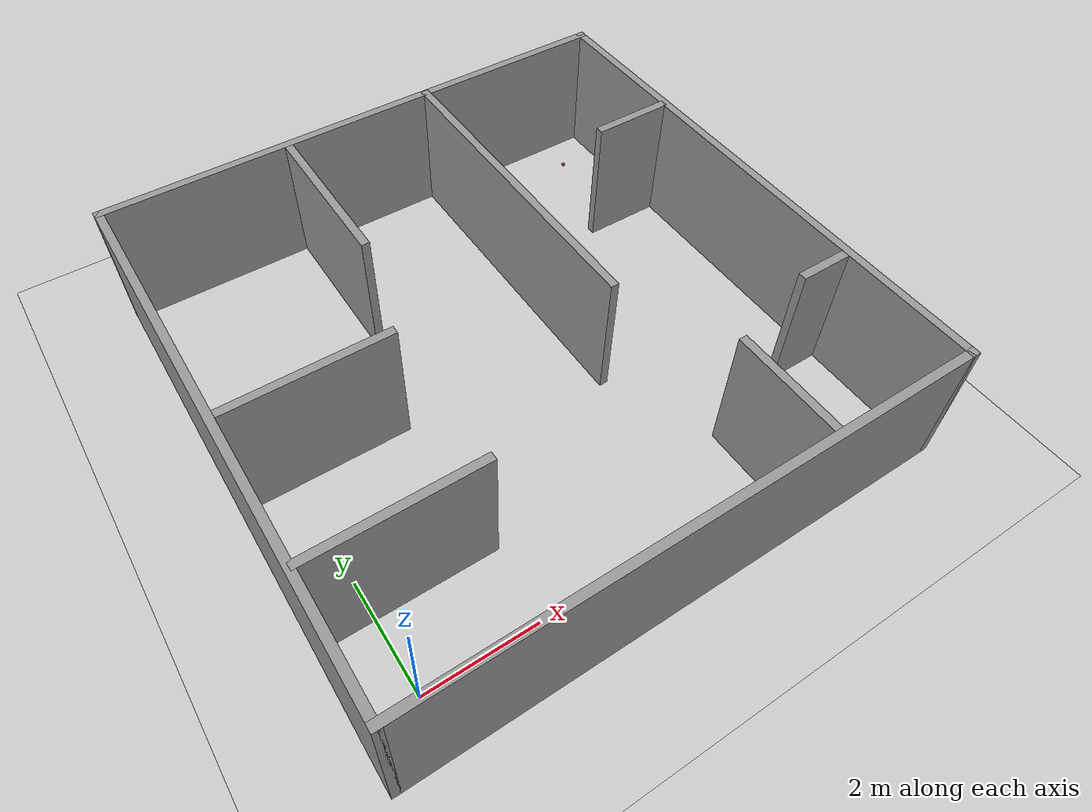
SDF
<sdf version="1.6">
 <world name="default">
  <light name="sun" type="directional">
   <pose>0 0 10 0 -0 0</pose>
   <diffuse>0.8 0.8 0.8 1</diffuse>
   <specular>0.2 0.2 0.2 1</specular>
   <attenuation>
    <range>1000</range>
    <constant>0.9</constant>
    <linear>0.01</linear>
    <quadratic>0.001</quadratic>
   </attenuation>
   <direction>-0.5 0.1 -0.9</direction>
  </light>
  <model name="ground_plane">
   <static>1</static>
   <link name="link">
    <collision name="collision">
     <geometry><plane><normal>0 0 1</normal><size>100 100</size></plane></geometry>
     <surface><friction><ode><mu>100</mu><mu2>50</mu2></ode></friction></surface>
    </collision>
    <visual name="visual">
     <cast_shadows>0</cast_shadows>
     <geometry><plane><normal>0 0 1</normal><size>100 100</size></plane></geometry>
     <material>
      <script><uri>file://media/materials/scripts/gazebo.material</uri><name>Gazebo/Grey</name></script>
     </material>
    </visual>
   </link>
  </model>
  <gravity>0 0 -9.8</gravity>
  <magnetic_field>6e-06 2.3e-05 -4.2e-05</magnetic_field>
  <atmosphere type="adiabatic"/>
  <physics name="default_physics" default="0" type="ode">
   <max_step_size>0.001</max_step_size>
   <real_time_factor>1</real_time_factor>
   <real_time_update_rate>1000</real_time_update_rate>
  </physics>
  <scene><ambient>0.4 0.4 0.4 1</ambient><background>0.7 0.7 0.7 1</background><shadows>1</shadows></scene>
  <audio><device>default</device></audio>
  <spherical_coordinates>
   <surface_model>EARTH_WGS84</surface_model>
   <latitude_deg>0</latitude_deg>
   <longitude_deg>0</longitude_deg>
   <elevation>0</elevation>
   <heading_deg>0</heading_deg>
  </spherical_coordinates>
  <model name="10*10EMPTY">
   <pose>4.04341 4.04646 0 0 -0 0</pose>
   <link name="Wall_25">
    <collision name="Wall_25_Collision">
     <geometry><box><size>10 0.15 2.5</size></box></geometry>
     <pose>0 0 1.25 0 -0 0</pose>
    </collision>
    <visual name="Wall_25_Visual">
     <pose>0 0 1.25 0 -0 0</pose>
     <geometry><box><size>10 0.15 2.5</size></box></geometry>
     <material>
      <script><uri>file://media/materials/scripts/gazebo.material</uri><name>Gazebo/Grey</name></script>
      <ambient>1 1 1 1</ambient>
     </material>
     <meta><layer>0</layer></meta>
    </visual>
    <pose>0 -4.925 0 0 -0 0</pose>
   </link>
   <link name="Wall_27">
    <collision name="Wall_27_Collision">
     <geometry><box><size>10 0.15 2.5</size></box></geometry>
     <pose>0 0 1.25 0 -0 0</pose>
    </collision>
    <visual name="Wall_27_Visual">
     <pose>0 0 1.25 0 -0 0</pose>
     <geometry><box><size>10 0.15 2.5</size></box></geometry>
     <material>
      <script><uri>file://media/materials/scripts/gazebo.material</uri><name>Gazebo/Grey</name></script>
      <ambient>1 1 1 1</ambient>
     </material>
     <meta><layer>0</layer></meta>
    </visual>
    <pose>4.925 -0 0 0 -0 1.5708</pose>
   </link>
   <link name="Wall_28">
    <collision name="Wall_28_Collision">
     <geometry><box><size>10 0.15 2.5</size></box></geometry>
     <pose>0 0 1.25 0 -0 0</pose>
    </collision>
    <visual name="Wall_28_Visual">
     <pose>0 0 1.25 0 -0 0</pose>
     <geometry><box><size>10 0.15 2.5</size></box></geometry>
     <material>
      <script><uri>file://media/materials/scripts/gazebo.material</uri><name>Gazebo/Grey</name></script>
      <ambient>1 1 1 1</ambient>
     </material>
     <meta><layer>0</layer></meta>
    </visual>
    <pose>0 4.925 0 0 -0 3.14159</pose>
   </link>
   <link name="Wall_29">
    <collision name="Wall_29_Collision">
     <geometry><box><size>10 0.15 2.5</size></box></geometry>
     <pose>0 0 1.25 0 -0 0</pose>
    </collision>
    <visual name="Wall_29_Visual">
     <pose>0 0 1.25 0 -0 0</pose>
     <geometry><box><size>10 0.15 2.5</size></box></geometry>
     <material>
      <script><uri>file://media/materials/scripts/gazebo.material</uri><name>Gazebo/Grey</name></script>
      <ambient>1 1 1 1</ambient>
     </material>
     <meta><layer>0</layer></meta>
    </visual>
    <pose>-4.925 -0 0 0 -0 -1.5708</pose>
   </link>
   <link name="Wall_33">
    <collision name="Wall_33_Collision">
     <geometry><box><size>3 0.15 2.5</size></box></geometry>
     <pose>0 0 1.25 0 -0 0</pose>
    </collision>
    <visual name="Wall_33_Visual">
     <pose>0 0 1.25 0 -0 0</pose>
     <geometry><box><size>3 0.15 2.5</size></box></geometry>
     <material>
      <script><uri>file://media/materials/scripts/gazebo.material</uri><name>Gazebo/Grey</name></script>
      <ambient>1 1 1 1</ambient>
     </material>
     <meta><layer>0</layer></meta>
    </visual>
    <pose>-3.42448 -2.6552 0 0 -0 0</pose>
   </link>
   <link name="Wall_35">
    <collision name="Wall_35_Collision">
     <geometry><box><size>3 0.15 2.5</size></box></geometry>
     <pose>0 0 1.25 0 -0 0</pose>
    </collision>
    <visual name="Wall_35_Visual">
     <pose>0 0 1.25 0 -0 0</pose>
     <geometry><box><size>3 0.15 2.5</size></box></geometry>
     <material>
      <script><uri>file://media/materials/scripts/gazebo.material</uri><name>Gazebo/Grey</name></script>
      <ambient>1 1 1 1</ambient>
     </material>
     <meta><layer>0</layer></meta>
    </visual>
    <pose>-3.47577 0.029239 0 0 -0 0</pose>
   </link>
   <link name="Wall_37">
    <collision name="Wall_37_Collision">
     <geometry><box><size>6 0.15 2.5</size></box></geometry>
     <pose>0 0 1.25 0 -0 0</pose>
    </collision>
    <visual name="Wall_37_Visual">
     <pose>0 0 1.25 0 -0 0</pose>
     <geometry><box><size>6 0.15 2.5</size></box></geometry>
     <material>
      <script><uri>file://media/materials/scripts/gazebo.material</uri><name>Gazebo/Grey</name></script>
      <ambient>1 1 1 1</ambient>
     </material>
     <meta><layer>0</layer></meta>
    </visual>
    <pose>1.32303 1.97727 0 0 -0 -1.5708</pose>
   </link>
   <link name="Wall_39">
    <collision name="Wall_39_Collision">
     <geometry><box><size>3 0.15 2.5</size></box></geometry>
     <pose>0 0 1.25 0 -0 0</pose>
    </collision>
    <visual name="Wall_39_Visual">
     <pose>0 0 1.25 0 -0 0</pose>
     <geometry><box><size>3 0.15 2.5</size></box></geometry>
     <material>
      <script><uri>file://media/materials/scripts/gazebo.material</uri><name>Gazebo/Grey</name></script>
      <ambient>1 1 1 1</ambient>
     </material>
     <meta><layer>0</layer></meta>
    </visual>
    <pose>-1.5153 3.39178 0 0 -0 -1.5708</pose>
   </link>
   <link name="Wall_41">
    <collision name="Wall_41_Collision">
     <geometry><box><size>2 0.15 2.5</size></box></geometry>
     <pose>0 0 1.25 0 -0 0</pose>
    </collision>
    <visual name="Wall_41_Visual">
     <pose>0 0 1.25 0 -0 0</pose>
     <geometry><box><size>2 0.15 2.5</size></box></geometry>
     <material>
      <script><uri>file://media/materials/scripts/gazebo.material</uri><name>Gazebo/Grey</name></script>
      <ambient>1 1 1 1</ambient>
     </material>
     <meta><layer>0</layer></meta>
    </visual>
    <pose>2.28054 -3.88797 0 0 -0 -1.5708</pose>
   </link>
   <link name="Wall_43">
    <collision name="Wall_43_Collision">
     <geometry><box><size>1.5 0.15 2.5</size></box></geometry>
     <pose>0 0 1.25 0 -0 0</pose>
    </collision>
    <visual name="Wall_43_Visual">
     <pose>0 0 1.25 0 -0 0</pose>
     <geometry><box><size>1.5 0.15 2.5</size></box></geometry>
     <material>
      <script><uri>file://media/materials/scripts/gazebo.material</uri><name>Gazebo/Grey</name></script>
      <ambient>1 1 1 1</ambient>
     </material>
     <meta><layer>0</layer></meta>
    </visual>
    <pose>4.15242 2.23493 0 0 -0 0</pose>
   </link>
   <link name="Wall_45">
    <collision name="Wall_45_Collision">
     <geometry><box><size>1 0.15 2.5</size></box></geometry>
     <pose>0 0 1.25 0 -0 0</pose>
    </collision>
    <visual name="Wall_45_Visual">
     <pose>0 0 1.25 0 -0 0</pose>
     <geometry><box><size>1 0.15 2.5</size></box></geometry>
     <material>
      <script><uri>file://media/materials/scripts/gazebo.material</uri><name>Gazebo/Grey</name></script>
      <ambient>1 1 1 1</ambient>
     </material>
     <meta><layer>0</layer></meta>
    </visual>
    <pose>4.4032 -2.45002 0 0 -0 3.14159</pose>
   </link>
   <static>1</static>
  </model>
  <model name="RoboCup SPL Ball">
   <static>0</static>
   <link name="ball">
    <inertial>
     <mass>0.0056</mass>
     <inertia>
      <ixx>2.37e-06</ixx>
      <iyy>2.37e-06</iyy>
      <izz>2.37e-06</izz>
      <ixy>0</ixy>
      <ixz>0</ixz>
      <iyz>0</iyz>
     </inertia>
    </inertial>
    <collision name="collision"><geometry><sphere><radius>0.0325</radius></sphere></geometry></collision>
    <visual name="visual">
     <geometry><sphere><radius>0.0325</radius></sphere></geometry>
     <material>
      <script><uri>file://media/materials/scripts/gazebo.material</uri><name>Gazebo/RedBright</name></script>
     </material>
    </visual>
   </link>
   <pose>8.00543 8.04695 0.217489 0 -0 0</pose>
  </model>
 </world>
</sdf>
